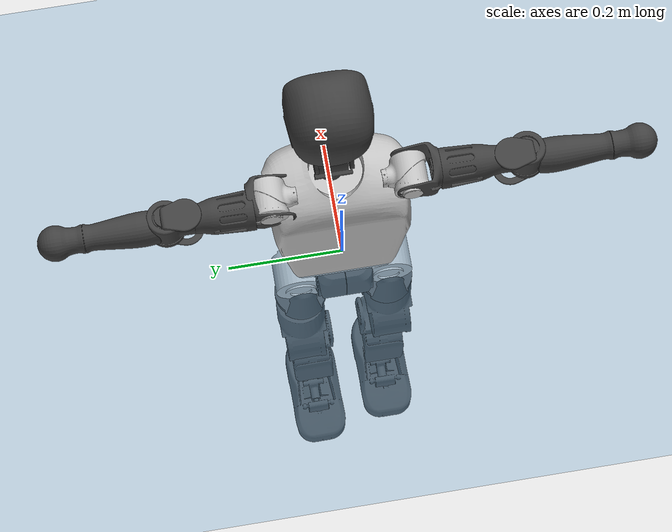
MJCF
<mujoco model="T1">
  <compiler angle="radian" assetdir="assets" balanceinertia="true" inertiafromgeom="false"/>

  <option timestep="0.005" density="1.2" viscosity="2e-05"/>

  <size nkey="1"/>

  <visual>
    <quality shadowsize="8192"/>
    <map shadowclip="0.5"/>
  </visual>

  <default>
    <default class="/">
      <joint armature="0.01" damping="0.01" frictionloss="0.1"/>
      <geom contype="0" conaffinity="0" group="1" solref="-1000 -80"/>
      <site size="0.01 0.005 0.005" group="5"/>
      <general forcelimited="true" biastype="affine" gainprm="25" biasprm="0 -25 -0.6"/>
      <default class="t1">
        <geom rgba="0.25 0.25 0.25 1"/>
        <default class="visual">
          <geom type="mesh" group="2"/>
        </default>
        <default class="collision">
          <geom group="3"/>
        </default>
        <default class="foot">
          <geom size="0.1115 0.05 0.015" type="box" condim="6" group="4" priority="1" solimp="0.015 1 0.015"/>
        </default>
        <default class="reward_collision_sphere">
          <geom group="5" rgba="1 0 0 1"/>
        </default>
      </default>
    </default>
  </default>

  <asset>
    <texture type="skybox" colorspace="auto" name="//unnamed_texture_0" builtin="gradient" rgb1="0.95 0.95 0.95" rgb2="0.95 0.95 0.95" width="100" height="600"/>
    <texture type="2d" colorspace="auto" name="texplane" builtin="checker" rgb1="0.345 0.575 0.748" rgb2="0.345 0.575 0.748" markrgb="1 1 1" width="512" height="512"/>
    <material name="MatPlane" class="/" texture="texplane" texuniform="true" texrepeat="2 2" specular="0.9"/>
    <mesh name="Trunk" class="/" file="Trunk.stl"/>
    <mesh name="H1" class="/" file="H1.stl"/>
    <mesh name="H2" class="/" file="H2.stl"/>
    <mesh name="AL1" class="/" file="AL1.stl"/>
    <mesh name="AL2" class="/" file="AL2.stl"/>
    <mesh name="AL3" class="/" file="AL3.stl"/>
    <mesh name="left_hand_link" class="/" file="left_hand_link.stl"/>
    <mesh name="AR1" class="/" file="AR1.stl"/>
    <mesh name="AR2" class="/" file="AR2.stl"/>
    <mesh name="AR3" class="/" file="AR3.stl"/>
    <mesh name="right_hand_link" class="/" file="right_hand_link.stl"/>
    <mesh name="Waist" class="/" file="Waist.stl"/>
    <mesh name="Hip_Pitch_Left" class="/" file="Hip_Pitch_Left.stl"/>
    <mesh name="Hip_Roll_Left" class="/" file="Hip_Roll_Left.stl"/>
    <mesh name="Hip_Yaw_Left" class="/" file="Hip_Yaw_Left.stl"/>
    <mesh name="Shank_Left" class="/" file="Shank_Left.stl"/>
    <mesh name="Ankle_Cross_Left" class="/" file="Ankle_Cross_Left.stl"/>
    <mesh name="left_foot_link" class="/" file="left_foot_link.stl"/>
    <mesh name="Hip_Pitch_Right" class="/" file="Hip_Pitch_Right.stl"/>
    <mesh name="Hip_Roll_Right" class="/" file="Hip_Roll_Right.stl"/>
    <mesh name="Hip_Yaw_Right" class="/" file="Hip_Yaw_Right.stl"/>
    <mesh name="Shank_Right" class="/" file="Shank_Right.stl"/>
    <mesh name="Ankle_Cross_Right" class="/" file="Ankle_Cross_Right.stl"/>
    <mesh name="right_foot_link" class="/" file="right_foot_link.stl"/>
  </asset>

  <worldbody>
    <geom name="floor" class="/" size="100 100 0.125" type="plane" group="0" material="MatPlane"/>
    <light name="toplight_shadow" class="/" pos="0 0 5" dir="0.0990148 0.0990148 -0.990148" type="directional" ambient="0.04 0.04 0.04" diffuse="0.55 0.55 0.55" specular="0.12 0.12 0.12"/>
    <light name="toplight_fill" class="/" pos="0 0 5" dir="0.0990148 0.0990148 -0.990148" type="directional" castshadow="false" ambient="0.04 0.04 0.04" diffuse="0.3 0.3 0.3" specular="0.08 0.08 0.08"/>
    <body name="trunk" childclass="t1" pos="-0.0069945 0.00136413 -0.00157909" quat="1 -0.000178981 -7.3333e-05 0.000432244">
      <inertial pos="0.0260128 -0.00329222 0.134122" quat="0.999936 -0.00960006 0.00134998 -0.00576483" mass="5.89394" diaginertia="0.0020292 0.0209191 0.146788"/>
      <joint name="//unnamed_joint_0" type="free" armature="0" damping="0" frictionloss="0"/>
      <geom name="//unnamed_geom_1" class="visual" rgba="0.76 0.76 0.76 1" mesh="Trunk"/>
      <geom name="//unnamed_geom_2" class="collision" size="0.0619447 0.0825929 0.123889" pos="0.0286924 0 0.147082" type="box"/>
      <geom name="//unnamed_geom_3" class="reward_collision_sphere" size="0.0949818" pos="0.0286924 0 0.122569"/>
      <geom name="//unnamed_geom_4" class="reward_collision_sphere" size="0.0123889" pos="0.0286924 0.065781 0"/>
      <geom name="//unnamed_geom_5" class="reward_collision_sphere" size="0.0123889" pos="0.0286924 -0.065781 0"/>
      <geom name="//unnamed_geom_6" class="reward_collision_sphere" size="0.0123889" pos="0.0286924 0.0828067 0.220624"/>
      <geom name="//unnamed_geom_7" class="reward_collision_sphere" size="0.0123889" pos="0.0286924 -0.0828067 0.220624"/>
      <site name="imu" pos="0.0560644 0.0212799 -0.0394733" size="0.00825929"/>
      <camera name="track" pos="0 -1.54779 0" quat="0.707107 0.707107 0 0" mode="trackcom"/>
      <camera name="ego_camera" pos="0.0583412 0 0.514788" quat="-0.5 -0.5 0.5 0.5"/>
      <body name="H1" pos="0.0425115 0.0116114 0.310436" quat="0.999999 -0.000275062 0.00109983 -0.000208965">
        <inertial pos="0.00582352 -0.0043138 0.075274" quat="0.731348 0.000183344 0.0282301 0.681419" mass="0.218186" diaginertia="6.02131e-06 6.99918e-05 0.000398522"/>
        <joint name="AAHead_yaw" pos="0 0 0" axis="-0.0263281 0.0474586 0.998526" range="-1.58938 1.51107" armature="0.00454464" damping="0" frictionloss="0.0591141"/>
        <geom name="//unnamed_geom_8" class="visual" mesh="H1"/>
        <body name="H2" pos="-0.00359559 -0.00168969 0.0761135" quat="0.99999 -0.00403353 0.00185739 -0.000111905">
          <inertial pos="0.00313084 0.0130305 0.119643" quat="0.987672 0.11154 -0.0731793 -0.0819015" mass="0.325373" diaginertia="5.49638e-05 0.00056149 0.00458574"/>
          <joint name="Head_pitch" pos="0 0 0" axis="0.000292886 -1 -0.000240701" stiffness="0.0273491" range="-1.26795 0.348088" armature="0.00560304" damping="0.000568735" frictionloss="0.085912"/>
          <geom name="//unnamed_geom_9" class="visual" mesh="H2"/>
          <geom name="//unnamed_geom_10" class="collision" size="0.0660743" pos="0.00478206 0 0.134825"/>
          <geom name="//unnamed_geom_11" class="reward_collision_sphere" size="0.0743336" pos="0.00956413 0 0.122569"/>
        </body>
      </body>
      <body name="AL1" pos="0.0236654 0.0717943 0.262056" quat="1 -9.19694e-06 0.000446328 1.174e-05">
        <inertial pos="0.0114481 0.0234681 0.00841635" quat="0.506661 0.501072 -0.496361 0.49583" mass="0.259845" diaginertia="2.92789e-05 0.000309021 0.000738353"/>
        <joint name="Left_Shoulder_Pitch" pos="0 0 0" axis="0.00439238 0.999353 -0.0356954" range="-3.39796 1.24193" armature="0.00579123" damping="0" frictionloss="0.112933"/>
        <geom name="//unnamed_geom_12" class="visual" rgba="0.76 0.76 0.76 1" mesh="AL1"/>
        <body name="AL2" pos="0.00115758 0.0267962 -0.00708999" quat="0.999998 -0.00177115 0.000505773 0.000326638">
          <inertial pos="0.00206827 0.0312064 -0.00546783" quat="0.488008 0.511615 -0.487975 0.511839" mass="0.0861458" diaginertia="7.73044e-06 7.00994e-05 0.00045619"/>
          <joint name="Left_Shoulder_Roll" pos="0 0 0" axis="-0.99979 -0.00673598 0.0193706" stiffness="0.005481" range="-1.71421 1.94121" armature="0.00839523" damping="0" frictionloss="0.0820766"/>
          <geom name="//unnamed_geom_13" class="visual" mesh="AL2"/>
          <body name="AL3" pos="-0.0111693 0.046186 0.000288672" quat="0.999995 -0.00315864 -0.000723555 -0.000342422">
            <inertial pos="-0.00147674 0.0643323 -0.00902078" quat="0.689606 0.723213 -0.00721029 0.0367934" mass="0.562621" diaginertia="0.000276944 0.00348146 0.00166944"/>
            <joint name="Left_Elbow_Pitch" pos="0 0 0" axis="0.000259205 -1 -0.000549152" stiffness="0.0152114" range="-2.27987 2.08313" armature="0.0121474" damping="0.0279014" frictionloss="0.0762433"/>
            <geom name="//unnamed_geom_14" class="visual" mesh="AL3"/>
            <geom name="//unnamed_geom_15" class="collision" size="0.0247779 0.0619447" pos="0 0.0386947 0" quat="0.707105 0.707108 0 0" type="cylinder"/>
            <geom name="//unnamed_geom_16" class="reward_collision_sphere" size="0.0297334"/>
            <body name="left_hand_link" pos="-0.00343348 0.114555 0.00217911" quat="0.999991 -0.00345364 -0.00226846 -9.78487e-05">
              <inertial pos="-0.0129987 0.0941979 0.00105397" quat="0.71267 0.701315 -0.0157018 -0.0035025" mass="0.20037" diaginertia="0.000200589 0.00224863 0.000672158"/>
              <joint name="Left_Elbow_Yaw" pos="0 0 0" axis="0.00777063 -0.0343585 0.999379" range="-2.5489 0.126634" armature="0.00447909" damping="0" frictionloss="0.0469157"/>
              <geom name="//unnamed_geom_17" class="visual" mesh="left_hand_link"/>
              <geom name="//unnamed_geom_18" class="collision" size="0.0247779 0.0722688" pos="0 0.100606 0" quat="0.707105 0.707108 0 0" type="cylinder"/>
              <geom name="//unnamed_geom_19" class="reward_collision_sphere" size="0.0412964"/>
              <geom name="//unnamed_geom_20" class="reward_collision_sphere" size="0.0289075" pos="0 0.0851284 0"/>
              <geom name="//unnamed_geom_21" class="reward_collision_sphere" size="0.0289075" pos="0 0.166387 0"/>
            </body>
          </body>
        </body>
      </body>
      <body name="AR1" pos="0.0273398 -0.0719046 0.268875" quat="0.999996 -0.00277352 0.000403432 0.000653514">
        <inertial pos="-0.00532769 -0.037804 0.000302674" quat="0.504951 0.495939 -0.504285 0.494738" mass="0.29203" diaginertia="3.50349e-05 0.000346887 0.000784727"/>
        <joint name="Right_Shoulder_Pitch" pos="0 0 0" axis="-0.00157564 -0.999998 0.00113747" range="-1.20023 3.2529" armature="0.0055902" damping="0.0620649" frictionloss="0.107456"/>
        <geom name="//unnamed_geom_22" class="visual" rgba="0.76 0.76 0.76 1" mesh="AR1"/>
        <body name="AR2" pos="-0.000671679 -0.0408868 0.010696" quat="1 -0.000334054 -0.000326109 7.42914e-05">
          <inertial pos="0.00775172 -0.0378067 0.0118198" quat="0.51274 0.488538 -0.512427 0.48564" mass="0.0837584" diaginertia="9.11353e-06 0.000100076 0.000422001"/>
          <joint name="Right_Shoulder_Roll" pos="0 0 0" axis="-0.999779 -0.0172579 -0.0119835" stiffness="0.0484216" range="-1.98294 1.58041" armature="0.00659451" damping="0" frictionloss="0.0775668"/>
          <geom name="//unnamed_geom_23" class="visual" mesh="AR2"/>
          <body name="AR3" pos="-0.00155746 -0.0536511 -0.00284349" quat="1 0.000423498 0.000348173 0.00015246">
            <inertial pos="0.0108476 -0.069496 -8.51584e-05" quat="0.719303 0.694343 0.0185845 0.0121109" mass="0.586848" diaginertia="0.000331246 0.00357059 0.00149802"/>
            <joint name="Right_Elbow_Pitch" pos="0 0 0" axis="0.0259291 0.999651 -0.00508805" stiffness="0.0432835" range="-2.28727 2.40522" armature="0.00759183" damping="0.0111293" frictionloss="0.128154"/>
            <geom name="//unnamed_geom_24" class="visual" mesh="AR3"/>
            <geom name="//unnamed_geom_25" class="collision" size="0.0247779 0.0619447" pos="0 -0.0386947 0" quat="0.707105 0.707108 0 0" type="cylinder"/>
            <geom name="//unnamed_geom_26" class="reward_collision_sphere" size="0.0297334"/>
            <body name="right_hand_link" pos="-0.00677643 -0.119858 -0.000972496" quat="1 0.000653816 0.00036296 -0.000450971">
              <inertial pos="0.000503142 -0.083603 -0.00888012" quat="0.705502 0.708705 0.00211471 0.000515115" mass="0.181245" diaginertia="0.000200873 0.00255266 0.000630622"/>
              <joint name="Right_Elbow_Yaw" pos="0 0 0" axis="0.00231708 0.00120177 0.999997" range="-0.12691 2.50675" armature="0.00904793" damping="0.0222967" frictionloss="0.125751"/>
              <geom name="//unnamed_geom_27" class="visual" mesh="right_hand_link"/>
              <geom name="//unnamed_geom_28" class="collision" size="0.0247779 0.0722688" pos="0 -0.100606 0" quat="0.707105 0.707108 0 0" type="cylinder"/>
              <geom name="//unnamed_geom_29" class="reward_collision_sphere" size="0.0412964"/>
              <geom name="//unnamed_geom_30" class="reward_collision_sphere" size="0.0289075" pos="0 -0.0851284 0"/>
              <geom name="//unnamed_geom_31" class="reward_collision_sphere" size="0.0289075" pos="0 -0.166387 0"/>
            </body>
          </body>
        </body>
      </body>
      <body name="Waist" pos="0.0358995 -0.00389165 -0.143749" quat="0.999999 -0.000334629 -0.000723267 -0.000723697">
        <inertial pos="0.00411493 -0.00208837 0.00810234" quat="0.988439 -0.00472252 -0.151547 0.000383202" mass="1.62424" diaginertia="0.000115382 0.00147256 0.0112572"/>
        <joint name="Waist" pos="0 0 0" axis="-0.0313214 -0.0300169 0.999059" range="-1.44487 1.69278" armature="0.00887975" damping="0" frictionloss="0.125427"/>
        <geom name="//unnamed_geom_32" class="visual" mesh="Waist"/>
        <body name="Hip_Pitch_Left" pos="0.00166281 0.079419 0.00266345" quat="0.999999 0.000912694 -0.000418662 -0.000169122">
          <inertial pos="0.00151893 0.00311137 -0.0257693" quat="0.969814 0.243646 0.00555149 0.00813306" mass="0.577511" diaginertia="4.81411e-05 0.000357034 0.00296582"/>
          <joint name="Left_Hip_Pitch" pos="0 0 0" axis="0.00177953 0.999997 0.00147596" range="-1.73863 1.57534" armature="0.00558981" damping="0" frictionloss="0.0831384"/>
          <geom name="//unnamed_geom_33" class="visual" rgba="0.76 0.76 0.76 1" mesh="Hip_Pitch_Left"/>
          <body name="Hip_Roll_Left" pos="-0.010729 -0.00185023 -0.0250512" quat="0.999988 -0.00211419 0.00147224 0.00415451">
            <inertial pos="-0.00648499 0.00162904 -0.067018" quat="0.709888 -0.00473082 -0.0111188 0.704211" mass="0.276267" diaginertia="5.7739e-05 0.000488771 0.00161968"/>
            <joint name="Left_Hip_Roll" pos="0 0 0" axis="-0.998889 -0.00175698 -0.0471017" range="-1.79396 0.186635" armature="0.0108461" damping="0.0335866" frictionloss="0.0990868"/>
            <geom name="//unnamed_geom_34" class="visual" mesh="Hip_Roll_Left"/>
            <geom name="//unnamed_geom_35" class="reward_collision_sphere" size="0.0454261"/>
            <body name="Hip_Yaw_Left" pos="-0.00585424 0.00280898 -0.10628" quat="0.999988 -0.00444417 -0.00178042 0.00133748">
              <inertial pos="0.00806057 0.00179361 -0.106528" quat="0.695575 -0.0286278 -0.0397338 0.716782" mass="1.2109" diaginertia="0.000559075 0.0072132 0.00731478"/>
              <joint name="Left_Hip_Yaw" pos="0 0 0" axis="0.0108947 -0.00531518 -0.999927" stiffness="0.0509521" range="-1.24143 0.806675" armature="0.00788112" damping="0.00803425" frictionloss="0.0452299"/>
              <geom name="//unnamed_geom_36" class="visual" mesh="Hip_Yaw_Left"/>
              <geom name="//unnamed_geom_37" class="collision" size="0.0412964 0.0660743" type="cylinder"/>
              <body name="Shank_Left" pos="-0.00788155 -0.0107686 -0.160806" quat="1 2.25271e-05 -0.000185247 -0.000306904">
                <inertial pos="0.00913311 -0.00228654 -0.155268" quat="0.999888 -0.00190378 -0.0133828 0.0063932" mass="1.07065" diaginertia="0.000888811 0.00819662 0.00476126"/>
                <joint name="Left_Knee_Pitch" pos="0 0 0" axis="-0.0448278 0.998978 0.0057634" range="0.0333001 2.17405" armature="0.0113836" damping="0" frictionloss="0.0359132"/>
                <geom name="//unnamed_geom_38" class="visual" mesh="Shank_Left"/>
                <geom name="//unnamed_geom_39" class="collision" size="0.0412964 0.0619447" pos="0 0 -0.147082" type="cylinder"/>
                <geom name="//unnamed_geom_40" class="reward_collision_sphere" size="0.0536854"/>
                <body name="Ankle_Cross_Left" pos="-0.000331388 -0.000240873 -0.347693" quat="1 3.26843e-05 -2.21789e-05 -6.07162e-05">
                  <inertial pos="-1.21166e-05 -0.00148777 -0.0101366" quat="0.443947 0.550242 0.550922 0.44343" mass="0.0382593" diaginertia="6.33485e-07 6.71079e-06 2.86876e-05"/>
                  <joint name="Left_Ankle_Pitch" pos="0 0 0" axis="0.0393675 0.999205 0.00625177" stiffness="0.0167284" range="-0.88395 0.493433" armature="0.00334202" damping="0.012539" frictionloss="0.101745"/>
                  <geom name="//unnamed_geom_41" class="visual" mesh="Ankle_Cross_Left"/>
                  <body name="left_foot_link" pos="-0.0122144 -0.00180619 -0.0103177" quat="1 0.000278052 1.50083e-05 -0.000176655">
                    <inertial pos="0.0110448 -0.00698484 -0.0106379" quat="-1.76918e-05 0.621675 0.00108935 0.783275" mass="0.392387" diaginertia="6.6538e-05 0.000648502 0.00679001"/>
                    <joint name="Left_Ankle_Roll" pos="0 0 0" axis="-0.999942 0.00811527 0.00710021" range="-0.564101 0.542023" armature="0.00818161" damping="0.0676721" frictionloss="0.0841842"/>
                    <geom name="//unnamed_geom_42" class="visual" mesh="left_foot_link"/>
                    <geom name="left_foot" class="foot" size="0.111532 0.0565215 0.0151181" pos="0.00478206 0 -0.0183853"/>
                    <geom name="//unnamed_geom_44" class="reward_collision_sphere" size="0.0429483" pos="0.00478206 0 -0.0183853"/>
                    <geom name="//unnamed_geom_45" class="reward_collision_sphere" size="0.0247779" pos="0.0454296 -0.0177996 -0.0183853"/>
                    <geom name="//unnamed_geom_46" class="reward_collision_sphere" size="0.0247779" pos="-0.0334745 -0.0177996 -0.0183853"/>
                    <site name="left_foot" class="foot" pos="0.00478206 0 -0.0183853" size="0.00825929"/>
                  </body>
                </body>
              </body>
            </body>
          </body>
        </body>
        <body name="Hip_Pitch_Right" pos="0.00654393 -0.0812296 0.00699102" quat="1 0.000110629 0.000295199 0.00012885">
          <inertial pos="0.00080872 0.00518254 -0.0124982" quat="0.974121 -0.225935 0.00214516 -0.00608136" mass="0.575047" diaginertia="5.16446e-05 0.000351502 0.00324541"/>
          <joint name="Right_Hip_Pitch" pos="0 0 0" axis="-0.0225425 -0.999746 0.000725237" stiffness="0.0204945" range="-1.31026 1.56778" armature="0.00917269" damping="0" frictionloss="0.127919"/>
          <geom name="//unnamed_geom_47" class="visual" rgba="0.76 0.76 0.76 1" mesh="Hip_Pitch_Right"/>
          <body name="Hip_Roll_Right" pos="-0.0111269 -0.000910857 -0.0274789" quat="0.999998 0.000491574 -0.00188888 -0.000603374">
            <inertial pos="0.00331952 0.00842152 -0.0745269" quat="0.709431 -0.0156749 0.00239805 0.704597" mass="0.2422" diaginertia="4.76125e-05 0.000490881 0.00137172"/>
            <joint name="Right_Hip_Roll" pos="0 0 0" axis="-0.998498 -0.0111326 0.0536372" stiffness="0.000365322" range="-0.170138 1.6015" armature="0.0113346" damping="0" frictionloss="0.0776894"/>
            <geom name="//unnamed_geom_48" class="visual" mesh="Hip_Roll_Right"/>
            <geom name="//unnamed_geom_49" class="reward_collision_sphere" size="0.0454261"/>
            <body name="Hip_Yaw_Right" pos="0.0039062 -0.00411455 -0.0914757" quat="1 0.000120929 0.000905142 0.000279471">
              <inertial pos="-0.00873746 -0.0105782 -0.103047" quat="0.714872 -0.079643 -0.0737709 0.690777" mass="1.21408" diaginertia="0.000629355 0.00743754 0.00757605"/>
              <joint name="Right_Hip_Yaw" pos="0 0 0" axis="-1.34714e-06 -1.45884e-05 -1" stiffness="0.00133092" range="-0.9506 0.957168" armature="0.00833067" damping="0.00853191" frictionloss="0.0831843"/>
              <geom name="//unnamed_geom_50" class="visual" mesh="Hip_Yaw_Right"/>
              <geom name="//unnamed_geom_51" class="collision" size="0.0412964 0.0660743" type="cylinder"/>
              <body name="Shank_Right" pos="-0.0078797 0.0110446 -0.173002" quat="1 0.000848402 0.000199277 0.000460291">
                <inertial pos="0.00882716 -0.0129234 -0.145548" quat="0.997366 0.00461873 -0.0091302 -0.0718085" mass="0.886203" diaginertia="0.000972665 0.0105581 0.00572307"/>
                <joint name="Right_Knee_Pitch" pos="0 0 0" axis="-0.00386269 -0.999984 -0.00419803" range="-2.22942 0.0110355" armature="0.00826684" damping="0.00150894" frictionloss="0.101812"/>
                <geom name="//unnamed_geom_52" class="visual" mesh="Shank_Right"/>
                <geom name="//unnamed_geom_53" class="collision" size="0.0412964 0.0619447" pos="0 0 -0.147082" type="cylinder"/>
                <geom name="//unnamed_geom_54" class="reward_collision_sphere" size="0.0536854"/>
                <body name="Ankle_Cross_Right" pos="0.00354697 -0.0028672 -0.341526" quat="1 9.67635e-05 -0.000438415 3.66819e-05">
                  <inertial pos="0.000623111 0.0094665 -0.0122461" quat="0.426165 0.512844 0.583591 0.463462" mass="0.0396232" diaginertia="7.04399e-07 9.23771e-06 3.47351e-05"/>
                  <joint name="Right_Ankle_Pitch" pos="0 0 0" axis="-0.0287913 -0.999221 -0.026977" range="-0.452978 0.873034" armature="0.00484552" damping="0.0579635" frictionloss="0.0766009"/>
                  <geom name="//unnamed_geom_55" class="visual" mesh="Ankle_Cross_Right"/>
                  <body name="right_foot_link" pos="0.000426669 -0.00322018 -0.025016" quat="1 -0.0001145 4.58615e-06 1.62433e-05">
                    <inertial pos="0.00181197 -0.00368091 -0.0212615" quat="0.00402967 0.634607 -0.0257308 0.772396" mass="0.391027" diaginertia="5.90524e-05 0.000633992 0.00593279"/>
                    <joint name="Right_Ankle_Roll" pos="0 0 0" axis="-0.999969 -0.00346879 0.00700964" range="-0.467108 0.572903" armature="0.00909193" damping="0" frictionloss="0.11182"/>
                    <geom name="//unnamed_geom_56" class="visual" mesh="right_foot_link"/>
                    <geom name="right_foot" class="foot" size="0.0933397 0.0423908 0.0107791" pos="0.00478206 0 -0.0183853"/>
                    <geom name="//unnamed_geom_58" class="reward_collision_sphere" size="0.0330372"/>
                    <geom name="//unnamed_geom_59" class="reward_collision_sphere" size="0.0247779" pos="0.00478206 0 -0.0183853"/>
                    <geom name="//unnamed_geom_60" class="reward_collision_sphere" size="0.0247779" pos="0.0454296 0.0177996 -0.0183853"/>
                    <geom name="//unnamed_geom_61" class="reward_collision_sphere" size="0.0247779" pos="-0.0334745 0.0177996 -0.0183853"/>
                    <site name="right_foot" class="foot" pos="0.00478206 0 -0.0183853" size="0.00825929"/>
                  </body>
                </body>
              </body>
            </body>
          </body>
        </body>
      </body>
    </body>
  </worldbody>

  <contact>
    <pair class="/" geom1="floor" geom2="left_foot" name="//unnamed_contact_0"/>
    <pair class="/" geom1="floor" geom2="right_foot" name="//unnamed_contact_1"/>
  </contact>

  <actuator>
    <general name="AAHead_yaw" class="/" joint="AAHead_yaw" forcerange="-4.17533 4.17533" gainprm="18.7367" biasprm="0 -18.7367 -0.60591"/>
    <general name="Head_pitch" class="/" joint="Head_pitch" forcerange="-5.52151 5.52151" gainprm="18.7367" biasprm="0 -18.7367 -0.60591"/>
    <general name="Left_Shoulder_Pitch" class="/" joint="Left_Shoulder_Pitch" forcerange="-15.3483 15.3483" gainprm="18.7367" biasprm="0 -18.7367 -0.60591"/>
    <general name="Left_Shoulder_Roll" class="/" joint="Left_Shoulder_Roll" forcerange="-14.145 14.145" gainprm="18.7367" biasprm="0 -18.7367 -0.60591"/>
    <general name="Left_Elbow_Pitch" class="/" joint="Left_Elbow_Pitch" forcerange="-10.452 10.452" gainprm="18.7367" biasprm="0 -18.7367 -0.60591"/>
    <general name="Left_Elbow_Yaw" class="/" joint="Left_Elbow_Yaw" forcerange="-11.6597 11.6597" gainprm="18.7367" biasprm="0 -18.7367 -0.60591"/>
    <general name="Right_Shoulder_Pitch" class="/" joint="Right_Shoulder_Pitch" forcerange="-17.369 17.369" gainprm="18.7367" biasprm="0 -18.7367 -0.60591"/>
    <general name="Right_Shoulder_Roll" class="/" joint="Right_Shoulder_Roll" forcerange="-15.9441 15.9441" gainprm="18.7367" biasprm="0 -18.7367 -0.60591"/>
    <general name="Right_Elbow_Pitch" class="/" joint="Right_Elbow_Pitch" forcerange="-15.3805 15.3805" gainprm="18.7367" biasprm="0 -18.7367 -0.60591"/>
    <general name="Right_Elbow_Yaw" class="/" joint="Right_Elbow_Yaw" forcerange="-13.7384 13.7384" gainprm="18.7367" biasprm="0 -18.7367 -0.60591"/>
    <general name="Waist" class="/" joint="Waist" forcerange="-25.8794 25.8794" gainprm="18.7367" biasprm="0 -18.7367 -0.60591"/>
    <general name="Left_Hip_Pitch" class="/" joint="Left_Hip_Pitch" forcerange="-36.62 36.62" gainprm="18.7367" biasprm="0 -18.7367 -0.60591"/>
    <general name="Left_Hip_Roll" class="/" joint="Left_Hip_Roll" forcerange="-23.9128 23.9128" gainprm="18.7367" biasprm="0 -18.7367 -0.60591"/>
    <general name="Left_Hip_Yaw" class="/" joint="Left_Hip_Yaw" forcerange="-32.3136 32.3136" gainprm="18.7367" biasprm="0 -18.7367 -0.60591"/>
    <general name="Left_Knee_Pitch" class="/" joint="Left_Knee_Pitch" forcerange="-40.0681 40.0681" gainprm="18.7367" biasprm="0 -18.7367 -0.60591"/>
    <general name="Left_Ankle_Pitch" class="/" joint="Left_Ankle_Pitch" forcerange="-19.8288 19.8288" gainprm="18.7367" biasprm="0 -18.7367 -0.60591"/>
    <general name="Left_Ankle_Roll" class="/" joint="Left_Ankle_Roll" forcerange="-11.7941 11.7941" gainprm="18.7367" biasprm="0 -18.7367 -0.60591"/>
    <general name="Right_Hip_Pitch" class="/" joint="Right_Hip_Pitch" forcerange="-36.5257 36.5257" gainprm="18.7367" biasprm="0 -18.7367 -0.60591"/>
    <general name="Right_Hip_Roll" class="/" joint="Right_Hip_Roll" forcerange="-25.435 25.435" gainprm="18.7367" biasprm="0 -18.7367 -0.60591"/>
    <general name="Right_Hip_Yaw" class="/" joint="Right_Hip_Yaw" forcerange="-27.7257 27.7257" gainprm="18.7367" biasprm="0 -18.7367 -0.60591"/>
    <general name="Right_Knee_Pitch" class="/" joint="Right_Knee_Pitch" forcerange="-65.0873 65.0873" gainprm="18.7367" biasprm="0 -18.7367 -0.60591"/>
    <general name="Right_Ankle_Pitch" class="/" joint="Right_Ankle_Pitch" forcerange="-22.6681 22.6681" gainprm="18.7367" biasprm="0 -18.7367 -0.60591"/>
    <general name="Right_Ankle_Roll" class="/" joint="Right_Ankle_Roll" forcerange="-10.9854 10.9854" gainprm="18.7367" biasprm="0 -18.7367 -0.60591"/>
  </actuator>

  <sensor>
    <gyro site="imu" name="imu_angular_velocity"/>
    <velocimeter site="imu" name="imu_linear_velocity"/>
    <framelinvel objtype="site" objname="left_foot" name="left_foot_global_linear_velocity"/>
    <framelinvel objtype="site" objname="right_foot" name="right_foot_global_linear_velocity"/>
  </sensor>

  <keyframe>
    <key name="home" qpos="0 0 0.6385 1 0 0 0 0 0 0 1.4 0 -0.4 0 -1.4 0 0.4 0 -0.4 0 0 0.8 -0.4 0 0.4 0 0 -0.8 0.4 0"/>
  </keyframe>
</mujoco>
